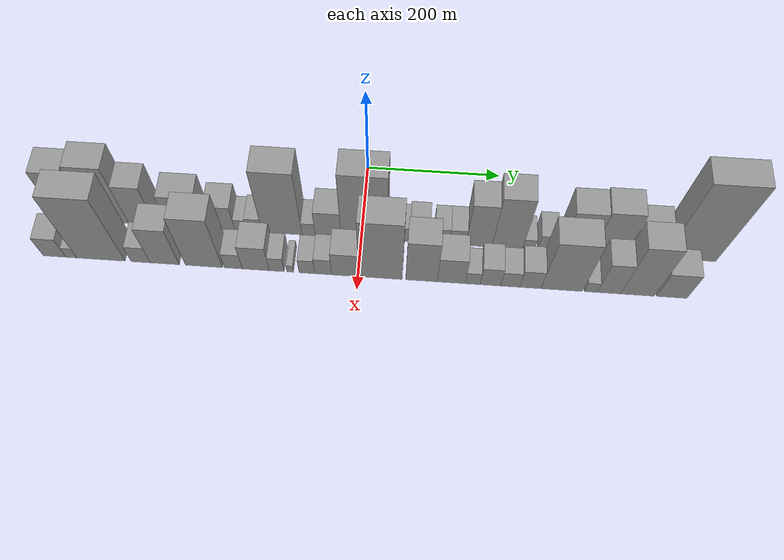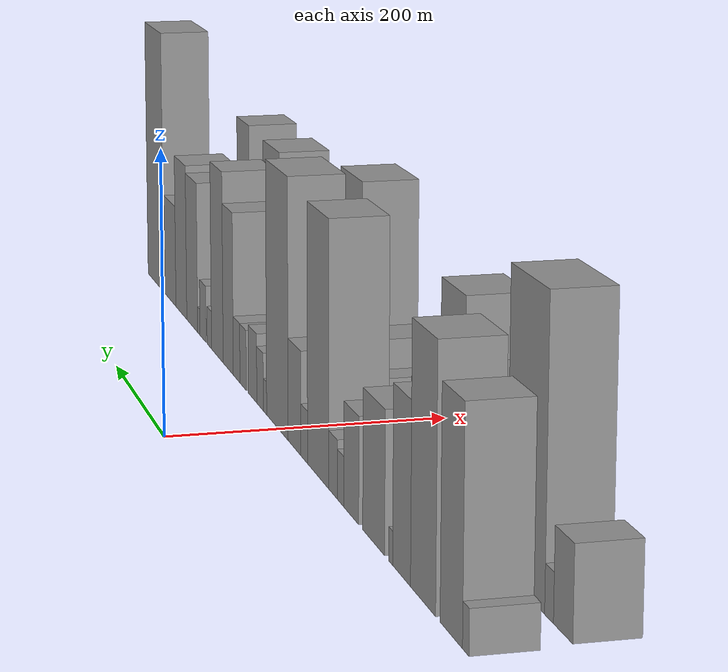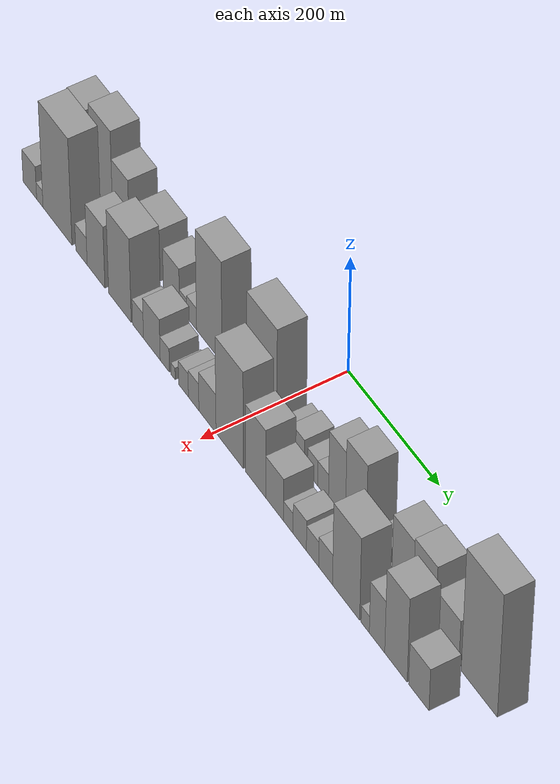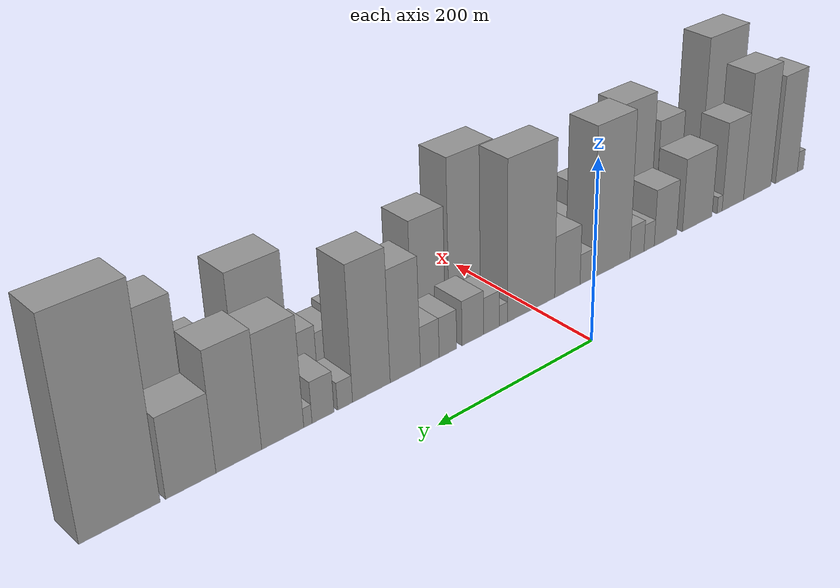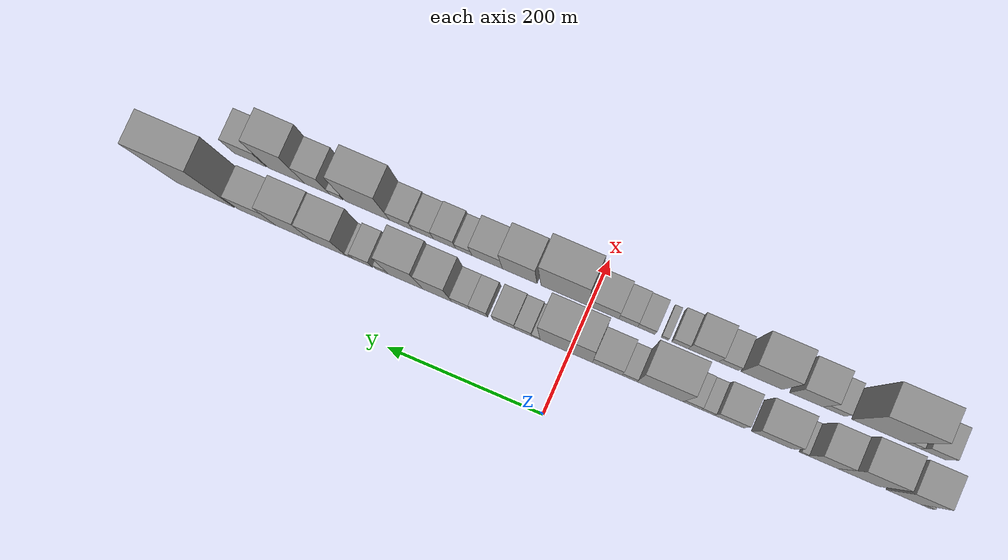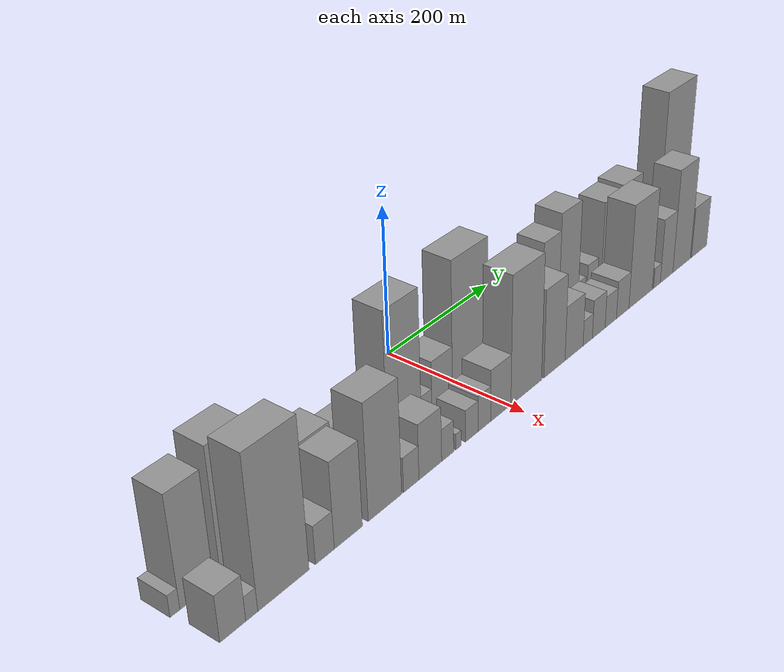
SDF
<sdf version="1.6">
 <world name="default">
  <scene>
   <sky><clouds><speed>12</speed></clouds></sky>
   <ambient>0.4 0.4 0.4 1</ambient>
   <background>0.7 0.7 0.7 1</background>
   <shadows>1</shadows>
  </scene>
  <gravity>0 0 -9.8066</gravity>
  <magnetic_field>6e-06 2.3e-05 -4.2e-05</magnetic_field>
  <physics default="0" name="default_physics" type="ode">
   <ode>
    <solver>
     <type>quick</type>
     <iters>10</iters>
     <sor>1.0</sor>
     <use_dynamic_moi_rescaling>0</use_dynamic_moi_rescaling>
    </solver>
    <constraints>
     <cfm>0</cfm>
     <erp>0.2</erp>
     <contact_max_correcting_vel>100</contact_max_correcting_vel>
     <contact_surface_layer>0.001</contact_surface_layer>
    </constraints>
   </ode>
   <max_step_size>0.004</max_step_size>
   <real_time_factor>1</real_time_factor>
   <real_time_update_rate>250</real_time_update_rate>
  </physics>
  <light name="sun" type="directional">
   <pose>0 0 10 0 0 0</pose>
   <diffuse>0.8 0.8 0.8 1</diffuse>
   <specular>0.2 0.2 0.2 1</specular>
   <attenuation>
    <range>1000</range>
    <constant>0.9</constant>
    <linear>0.01</linear>
    <quadratic>0.001</quadratic>
   </attenuation>
   <direction>-0.5 0.1 -0.9</direction>
  </light>
  <model name="building_1">
   <static>1</static>
   <pose>100.0000 -453.8603 0 0.000000 0.000000 0.000000</pose>
   <link name="link">
    <pose>0 0 13.50 0 0 0</pose>
    <collision name="collision"><geometry><box><size>40.0000 12.2794 27.0000</size></box></geometry></collision>
    <visual name="visual">
     <cast_shadows>0</cast_shadows>
     <geometry><box><size>40.0000 12.2794 27.0000</size></box></geometry>
     <material>
      <script>
       <uri>model://grey_wall/materials/scripts</uri>
       <uri>model://grey_wall/materials/textures</uri>
       <name>vrc/grey_wall</name>
      </script>
     </material>
    </visual>
   </link>
  </model>
  <model name="building_2">
   <static>1</static>
   <pose>100.0000 -425.9283 0 0.000000 0.000000 0.000000</pose>
   <link name="link">
    <pose>0 0 69.00 0 0 0</pose>
    <collision name="collision"><geometry><box><size>40.0000 43.5848 138.0000</size></box></geometry></collision>
    <visual name="visual">
     <cast_shadows>0</cast_shadows>
     <geometry><box><size>40.0000 43.5848 138.0000</size></box></geometry>
     <material>
      <script>
       <uri>model://grey_wall/materials/scripts</uri>
       <uri>model://grey_wall/materials/textures</uri>
       <name>vrc/grey_wall</name>
      </script>
     </material>
    </visual>
   </link>
  </model>
  <model name="building_3">
   <static>1</static>
   <pose>100.0000 -368.9042 0 0.000000 0.000000 0.000000</pose>
   <link name="link">
    <pose>0 0 79.50 0 0 0</pose>
    <collision name="collision"><geometry><box><size>40.0000 52.4633 159.0000</size></box></geometry></collision>
    <visual name="visual">
     <cast_shadows>0</cast_shadows>
     <geometry><box><size>40.0000 52.4633 159.0000</size></box></geometry>
     <material>
      <script>
       <uri>model://grey_wall/materials/scripts</uri>
       <uri>model://grey_wall/materials/textures</uri>
       <name>vrc/grey_wall</name>
      </script>
     </material>
    </visual>
   </link>
  </model>
  <model name="building_4">
   <static>1</static>
   <pose>100.0000 -322.9134 0 0.000000 0.000000 0.000000</pose>
   <link name="link">
    <pose>0 0 55.50 0 0 0</pose>
    <collision name="collision"><geometry><box><size>40.0000 39.5183 111.0000</size></box></geometry></collision>
    <visual name="visual">
     <cast_shadows>0</cast_shadows>
     <geometry><box><size>40.0000 39.5183 111.0000</size></box></geometry>
     <material>
      <script>
       <uri>model://grey_wall/materials/scripts</uri>
       <uri>model://grey_wall/materials/textures</uri>
       <name>vrc/grey_wall</name>
      </script>
     </material>
    </visual>
   </link>
  </model>
  <model name="building_5">
   <static>1</static>
   <pose>100.0000 -298.5578 0 0.000000 0.000000 0.000000</pose>
   <link name="link">
    <pose>0 0 10.50 0 0 0</pose>
    <collision name="collision"><geometry><box><size>40.0000 9.1928 21.0000</size></box></geometry></collision>
    <visual name="visual">
     <cast_shadows>0</cast_shadows>
     <geometry><box><size>40.0000 9.1928 21.0000</size></box></geometry>
     <material>
      <script>
       <uri>model://grey_wall/materials/scripts</uri>
       <uri>model://grey_wall/materials/textures</uri>
       <name>vrc/grey_wall</name>
      </script>
     </material>
    </visual>
   </link>
  </model>
  <model name="building_6">
   <static>1</static>
   <pose>100.0000 -258.9141 0 0.000000 0.000000 0.000000</pose>
   <link name="link">
    <pose>0 0 45.00 0 0 0</pose>
    <collision name="collision"><geometry><box><size>40.0000 52.0945 90.0000</size></box></geometry></collision>
    <visual name="visual">
     <cast_shadows>0</cast_shadows>
     <geometry><box><size>40.0000 52.0945 90.0000</size></box></geometry>
     <material>
      <script>
       <uri>model://grey_wall/materials/scripts</uri>
       <uri>model://grey_wall/materials/textures</uri>
       <name>vrc/grey_wall</name>
      </script>
     </material>
    </visual>
   </link>
  </model>
  <model name="building_7">
   <static>1</static>
   <pose>100.0000 -203.9618 0 0.000000 0.000000 0.000000</pose>
   <link name="link">
    <pose>0 0 34.50 0 0 0</pose>
    <collision name="collision"><geometry><box><size>40.0000 37.8100 69.0000</size></box></geometry></collision>
    <visual name="visual">
     <cast_shadows>0</cast_shadows>
     <geometry><box><size>40.0000 37.8100 69.0000</size></box></geometry>
     <material>
      <script>
       <uri>model://grey_wall/materials/scripts</uri>
       <uri>model://grey_wall/materials/textures</uri>
       <name>vrc/grey_wall</name>
      </script>
     </material>
    </visual>
   </link>
  </model>
  <model name="building_8">
   <static>1</static>
   <pose>100.0000 -176.5491 0 0.000000 0.000000 0.000000</pose>
   <link name="link">
    <pose>0 0 16.50 0 0 0</pose>
    <collision name="collision"><geometry><box><size>40.0000 17.0155 33.0000</size></box></geometry></collision>
    <visual name="visual">
     <cast_shadows>0</cast_shadows>
     <geometry><box><size>40.0000 17.0155 33.0000</size></box></geometry>
     <material>
      <script>
       <uri>model://grey_wall/materials/scripts</uri>
       <uri>model://grey_wall/materials/textures</uri>
       <name>vrc/grey_wall</name>
      </script>
     </material>
    </visual>
   </link>
  </model>
  <model name="building_9">
   <static>1</static>
   <pose>100.0000 -156.6429 0 0.000000 0.000000 0.000000</pose>
   <link name="link">
    <pose>0 0 19.50 0 0 0</pose>
    <collision name="collision"><geometry><box><size>40.0000 22.7969 39.0000</size></box></geometry></collision>
    <visual name="visual">
     <cast_shadows>0</cast_shadows>
     <geometry><box><size>40.0000 22.7969 39.0000</size></box></geometry>
     <material>
      <script>
       <uri>model://grey_wall/materials/scripts</uri>
       <uri>model://grey_wall/materials/textures</uri>
       <name>vrc/grey_wall</name>
      </script>
     </material>
    </visual>
   </link>
  </model>
  <model name="building_10">
   <static>1</static>
   <pose>100.0000 -115.8984 0 0.000000 0.000000 0.000000</pose>
   <link name="link">
    <pose>0 0 88.50 0 0 0</pose>
    <collision name="collision"><geometry><box><size>40.0000 58.6921 177.0000</size></box></geometry></collision>
    <visual name="visual">
     <cast_shadows>0</cast_shadows>
     <geometry><box><size>40.0000 58.6921 177.0000</size></box></geometry>
     <material>
      <script>
       <uri>model://grey_wall/materials/scripts</uri>
       <uri>model://grey_wall/materials/textures</uri>
       <name>vrc/grey_wall</name>
      </script>
     </material>
    </visual>
   </link>
  </model>
  <model name="building_11">
   <static>1</static>
   <pose>100.0000 -76.8967 0 0.000000 0.000000 0.000000</pose>
   <link name="link">
    <pose>0 0 18.00 0 0 0</pose>
    <collision name="collision"><geometry><box><size>40.0000 19.3113 36.0000</size></box></geometry></collision>
    <visual name="visual">
     <cast_shadows>0</cast_shadows>
     <geometry><box><size>40.0000 19.3113 36.0000</size></box></geometry>
     <material>
      <script>
       <uri>model://grey_wall/materials/scripts</uri>
       <uri>model://grey_wall/materials/textures</uri>
       <name>vrc/grey_wall</name>
      </script>
     </material>
    </visual>
   </link>
  </model>
  <model name="building_12">
   <static>1</static>
   <pose>100.0000 -48.3163 0 0.000000 0.000000 0.000000</pose>
   <link name="link">
    <pose>0 0 36.00 0 0 0</pose>
    <collision name="collision"><geometry><box><size>40.0000 37.8495 72.0000</size></box></geometry></collision>
    <visual name="visual">
     <cast_shadows>0</cast_shadows>
     <geometry><box><size>40.0000 37.8495 72.0000</size></box></geometry>
     <material>
      <script>
       <uri>model://grey_wall/materials/scripts</uri>
       <uri>model://grey_wall/materials/textures</uri>
       <name>vrc/grey_wall</name>
      </script>
     </material>
    </visual>
   </link>
  </model>
  <model name="building_13">
   <static>1</static>
   <pose>100.0000 4.3595 0 0.000000 0.000000 0.000000</pose>
   <link name="link">
    <pose>0 0 91.50 0 0 0</pose>
    <collision name="collision"><geometry><box><size>40.0000 67.5020 183.0000</size></box></geometry></collision>
    <visual name="visual">
     <cast_shadows>0</cast_shadows>
     <geometry><box><size>40.0000 67.5020 183.0000</size></box></geometry>
     <material>
      <script>
       <uri>model://grey_wall/materials/scripts</uri>
       <uri>model://grey_wall/materials/textures</uri>
       <name>vrc/grey_wall</name>
      </script>
     </material>
    </visual>
   </link>
  </model>
  <model name="building_14">
   <static>1</static>
   <pose>100.0000 43.5884 0 0.000000 0.000000 0.000000</pose>
   <link name="link">
    <pose>0 0 12.00 0 0 0</pose>
    <collision name="collision"><geometry><box><size>40.0000 10.9560 24.0000</size></box></geometry></collision>
    <visual name="visual">
     <cast_shadows>0</cast_shadows>
     <geometry><box><size>40.0000 10.9560 24.0000</size></box></geometry>
     <material>
      <script>
       <uri>model://grey_wall/materials/scripts</uri>
       <uri>model://grey_wall/materials/textures</uri>
       <name>vrc/grey_wall</name>
      </script>
     </material>
    </visual>
   </link>
  </model>
  <model name="building_15">
   <static>1</static>
   <pose>100.0000 59.7960 0 0.000000 0.000000 0.000000</pose>
   <link name="link">
    <pose>0 0 21.00 0 0 0</pose>
    <collision name="collision"><geometry><box><size>40.0000 21.4591 42.0000</size></box></geometry></collision>
    <visual name="visual">
     <cast_shadows>0</cast_shadows>
     <geometry><box><size>40.0000 21.4591 42.0000</size></box></geometry>
     <material>
      <script>
       <uri>model://grey_wall/materials/scripts</uri>
       <uri>model://grey_wall/materials/textures</uri>
       <name>vrc/grey_wall</name>
      </script>
     </material>
    </visual>
   </link>
  </model>
  <model name="building_16">
   <static>1</static>
   <pose>100.0000 84.7929 0 0.000000 0.000000 0.000000</pose>
   <link name="link">
    <pose>0 0 25.50 0 0 0</pose>
    <collision name="collision"><geometry><box><size>40.0000 28.5347 51.0000</size></box></geometry></collision>
    <visual name="visual">
     <cast_shadows>0</cast_shadows>
     <geometry><box><size>40.0000 28.5347 51.0000</size></box></geometry>
     <material>
      <script>
       <uri>model://grey_wall/materials/scripts</uri>
       <uri>model://grey_wall/materials/textures</uri>
       <name>vrc/grey_wall</name>
      </script>
     </material>
    </visual>
   </link>
  </model>
  <model name="building_17">
   <static>1</static>
   <pose>100.0000 117.4053 0 0.000000 0.000000 0.000000</pose>
   <link name="link">
    <pose>0 0 22.50 0 0 0</pose>
    <collision name="collision"><geometry><box><size>40.0000 22.6900 45.0000</size></box></geometry></collision>
    <visual name="visual">
     <cast_shadows>0</cast_shadows>
     <geometry><box><size>40.0000 22.6900 45.0000</size></box></geometry>
     <material>
      <script>
       <uri>model://grey_wall/materials/scripts</uri>
       <uri>model://grey_wall/materials/textures</uri>
       <name>vrc/grey_wall</name>
      </script>
     </material>
    </visual>
   </link>
  </model>
  <model name="building_18">
   <static>1</static>
   <pose>100.0000 140.6552 0 0.000000 0.000000 0.000000</pose>
   <link name="link">
    <pose>0 0 22.50 0 0 0</pose>
    <collision name="collision"><geometry><box><size>40.0000 23.8099 45.0000</size></box></geometry></collision>
    <visual name="visual">
     <cast_shadows>0</cast_shadows>
     <geometry><box><size>40.0000 23.8099 45.0000</size></box></geometry>
     <material>
      <script>
       <uri>model://grey_wall/materials/scripts</uri>
       <uri>model://grey_wall/materials/textures</uri>
       <name>vrc/grey_wall</name>
      </script>
     </material>
    </visual>
   </link>
  </model>
  <model name="building_19">
   <static>1</static>
   <pose>100.0000 171.1310 0 0.000000 0.000000 0.000000</pose>
   <link name="link">
    <pose>0 0 61.50 0 0 0</pose>
    <collision name="collision"><geometry><box><size>40.0000 37.1417 123.0000</size></box></geometry></collision>
    <visual name="visual">
     <cast_shadows>0</cast_shadows>
     <geometry><box><size>40.0000 37.1417 123.0000</size></box></geometry>
     <material>
      <script>
       <uri>model://grey_wall/materials/scripts</uri>
       <uri>model://grey_wall/materials/textures</uri>
       <name>vrc/grey_wall</name>
      </script>
     </material>
    </visual>
   </link>
  </model>
  <model name="building_20">
   <static>1</static>
   <pose>100.0000 212.0285 0 0.000000 0.000000 0.000000</pose>
   <link name="link">
    <pose>0 0 73.50 0 0 0</pose>
    <collision name="collision"><geometry><box><size>40.0000 44.6534 147.0000</size></box></geometry></collision>
    <visual name="visual">
     <cast_shadows>0</cast_shadows>
     <geometry><box><size>40.0000 44.6534 147.0000</size></box></geometry>
     <material>
      <script>
       <uri>model://grey_wall/materials/scripts</uri>
       <uri>model://grey_wall/materials/textures</uri>
       <name>vrc/grey_wall</name>
      </script>
     </material>
    </visual>
   </link>
  </model>
  <model name="building_21">
   <static>1</static>
   <pose>100.0000 243.0158 0 0.000000 0.000000 0.000000</pose>
   <link name="link">
    <pose>0 0 15.00 0 0 0</pose>
    <collision name="collision"><geometry><box><size>40.0000 17.3211 30.0000</size></box></geometry></collision>
    <visual name="visual">
     <cast_shadows>0</cast_shadows>
     <geometry><box><size>40.0000 17.3211 30.0000</size></box></geometry>
     <material>
      <script>
       <uri>model://grey_wall/materials/scripts</uri>
       <uri>model://grey_wall/materials/textures</uri>
       <name>vrc/grey_wall</name>
      </script>
     </material>
    </visual>
   </link>
  </model>
  <model name="building_22">
   <static>1</static>
   <pose>100.0000 268.0536 0 0.000000 0.000000 0.000000</pose>
   <link name="link">
    <pose>0 0 22.50 0 0 0</pose>
    <collision name="collision"><geometry><box><size>40.0000 24.7546 45.0000</size></box></geometry></collision>
    <visual name="visual">
     <cast_shadows>0</cast_shadows>
     <geometry><box><size>40.0000 24.7546 45.0000</size></box></geometry>
     <material>
      <script>
       <uri>model://grey_wall/materials/scripts</uri>
       <uri>model://grey_wall/materials/textures</uri>
       <name>vrc/grey_wall</name>
      </script>
     </material>
    </visual>
   </link>
  </model>
  <model name="building_23">
   <static>1</static>
   <pose>100.0000 285.0115 0 0.000000 0.000000 0.000000</pose>
   <link name="link">
    <pose>0 0 10.50 0 0 0</pose>
    <collision name="collision"><geometry><box><size>40.0000 9.1611 21.0000</size></box></geometry></collision>
    <visual name="visual">
     <cast_shadows>0</cast_shadows>
     <geometry><box><size>40.0000 9.1611 21.0000</size></box></geometry>
     <material>
      <script>
       <uri>model://grey_wall/materials/scripts</uri>
       <uri>model://grey_wall/materials/textures</uri>
       <name>vrc/grey_wall</name>
      </script>
     </material>
    </visual>
   </link>
  </model>
  <model name="building_24">
   <static>1</static>
   <pose>100.0000 312.2722 0 0.000000 0.000000 0.000000</pose>
   <link name="link">
    <pose>0 0 60.00 0 0 0</pose>
    <collision name="collision"><geometry><box><size>40.0000 45.3604 120.0000</size></box></geometry></collision>
    <visual name="visual">
     <cast_shadows>0</cast_shadows>
     <geometry><box><size>40.0000 45.3604 120.0000</size></box></geometry>
     <material>
      <script>
       <uri>model://grey_wall/materials/scripts</uri>
       <uri>model://grey_wall/materials/textures</uri>
       <name>vrc/grey_wall</name>
      </script>
     </material>
    </visual>
   </link>
  </model>
  <model name="building_25">
   <static>1</static>
   <pose>100.0000 358.5062 0 0.000000 0.000000 0.000000</pose>
   <link name="link">
    <pose>0 0 63.00 0 0 0</pose>
    <collision name="collision"><geometry><box><size>40.0000 47.1075 126.0000</size></box></geometry></collision>
    <visual name="visual">
     <cast_shadows>0</cast_shadows>
     <geometry><box><size>40.0000 47.1075 126.0000</size></box></geometry>
     <material>
      <script>
       <uri>model://grey_wall/materials/scripts</uri>
       <uri>model://grey_wall/materials/textures</uri>
       <name>vrc/grey_wall</name>
      </script>
     </material>
    </visual>
   </link>
  </model>
  <model name="building_26">
   <static>1</static>
   <pose>100.0000 406.8264 0 0.000000 0.000000 0.000000</pose>
   <link name="link">
    <pose>0 0 42.00 0 0 0</pose>
    <collision name="collision"><geometry><box><size>40.0000 49.5330 84.0000</size></box></geometry></collision>
    <visual name="visual">
     <cast_shadows>0</cast_shadows>
     <geometry><box><size>40.0000 49.5330 84.0000</size></box></geometry>
     <material>
      <script>
       <uri>model://grey_wall/materials/scripts</uri>
       <uri>model://grey_wall/materials/textures</uri>
       <name>vrc/grey_wall</name>
      </script>
     </material>
    </visual>
   </link>
  </model>
  <model name="building_27">
   <static>1</static>
   <pose>100.0000 474.0046 0 0.000000 0.000000 0.000000</pose>
   <link name="link">
    <pose>0 0 109.50 0 0 0</pose>
    <collision name="collision"><geometry><box><size>40.0000 74.8234 219.0000</size></box></geometry></collision>
    <visual name="visual">
     <cast_shadows>0</cast_shadows>
     <geometry><box><size>40.0000 74.8234 219.0000</size></box></geometry>
     <material>
      <script>
       <uri>model://grey_wall/materials/scripts</uri>
       <uri>model://grey_wall/materials/textures</uri>
       <name>vrc/grey_wall</name>
      </script>
     </material>
    </visual>
   </link>
  </model>
  <model name="building_28">
   <static>1</static>
   <pose>160.0000 -438.3810 0 0.000000 0.000000 0.000000</pose>
   <link name="link">
    <pose>0 0 28.50 0 0 0</pose>
    <collision name="collision"><geometry><box><size>40.0000 33.2380 57.0000</size></box></geometry></collision>
    <visual name="visual">
     <cast_shadows>0</cast_shadows>
     <geometry><box><size>40.0000 33.2380 57.0000</size></box></geometry>
     <material>
      <script>
       <uri>model://grey_wall/materials/scripts</uri>
       <uri>model://grey_wall/materials/textures</uri>
       <name>vrc/grey_wall</name>
      </script>
     </material>
    </visual>
   </link>
  </model>
  <model name="building_29">
   <static>1</static>
   <pose>160.0000 -413.9481 0 0.000000 0.000000 0.000000</pose>
   <link name="link">
    <pose>0 0 15.00 0 0 0</pose>
    <collision name="collision"><geometry><box><size>40.0000 15.6278 30.0000</size></box></geometry></collision>
    <visual name="visual">
     <cast_shadows>0</cast_shadows>
     <geometry><box><size>40.0000 15.6278 30.0000</size></box></geometry>
     <material>
      <script>
       <uri>model://grey_wall/materials/scripts</uri>
       <uri>model://grey_wall/materials/textures</uri>
       <name>vrc/grey_wall</name>
      </script>
     </material>
    </visual>
   </link>
  </model>
  <model name="building_30">
   <static>1</static>
   <pose>160.0000 -370.9385 0 0.000000 0.000000 0.000000</pose>
   <link name="link">
    <pose>0 0 93.00 0 0 0</pose>
    <collision name="collision"><geometry><box><size>40.0000 70.3914 186.0000</size></box></geometry></collision>
    <visual name="visual">
     <cast_shadows>0</cast_shadows>
     <geometry><box><size>40.0000 70.3914 186.0000</size></box></geometry>
     <material>
      <script>
       <uri>model://grey_wall/materials/scripts</uri>
       <uri>model://grey_wall/materials/textures</uri>
       <name>vrc/grey_wall</name>
      </script>
     </material>
    </visual>
   </link>
  </model>
  <model name="building_31">
   <static>1</static>
   <pose>160.0000 -313.0013 0 0.000000 0.000000 0.000000</pose>
   <link name="link">
    <pose>0 0 24.00 0 0 0</pose>
    <collision name="collision"><geometry><box><size>40.0000 27.4829 48.0000</size></box></geometry></collision>
    <visual name="visual">
     <cast_shadows>0</cast_shadows>
     <geometry><box><size>40.0000 27.4829 48.0000</size></box></geometry>
     <material>
      <script>
       <uri>model://grey_wall/materials/scripts</uri>
       <uri>model://grey_wall/materials/textures</uri>
       <name>vrc/grey_wall</name>
      </script>
     </material>
    </visual>
   </link>
  </model>
  <model name="building_32">
   <static>1</static>
   <pose>160.0000 -278.0594 0 0.000000 0.000000 0.000000</pose>
   <link name="link">
    <pose>0 0 54.00 0 0 0</pose>
    <collision name="collision"><geometry><box><size>40.0000 42.4009 108.0000</size></box></geometry></collision>
    <visual name="visual">
     <cast_shadows>0</cast_shadows>
     <geometry><box><size>40.0000 42.4009 108.0000</size></box></geometry>
     <material>
      <script>
       <uri>model://grey_wall/materials/scripts</uri>
       <uri>model://grey_wall/materials/textures</uri>
       <name>vrc/grey_wall</name>
      </script>
     </material>
    </visual>
   </link>
  </model>
  <model name="building_33">
   <static>1</static>
   <pose>160.0000 -221.2071 0 0.000000 0.000000 0.000000</pose>
   <link name="link">
    <pose>0 0 73.50 0 0 0</pose>
    <collision name="collision"><geometry><box><size>40.0000 53.3037 147.0000</size></box></geometry></collision>
    <visual name="visual">
     <cast_shadows>0</cast_shadows>
     <geometry><box><size>40.0000 53.3037 147.0000</size></box></geometry>
     <material>
      <script>
       <uri>model://grey_wall/materials/scripts</uri>
       <uri>model://grey_wall/materials/textures</uri>
       <name>vrc/grey_wall</name>
      </script>
     </material>
    </visual>
   </link>
  </model>
  <model name="building_34">
   <static>1</static>
   <pose>160.0000 -178.6978 0 0.000000 0.000000 0.000000</pose>
   <link name="link">
    <pose>0 0 22.50 0 0 0</pose>
    <collision name="collision"><geometry><box><size>40.0000 25.7149 45.0000</size></box></geometry></collision>
    <visual name="visual">
     <cast_shadows>0</cast_shadows>
     <geometry><box><size>40.0000 25.7149 45.0000</size></box></geometry>
     <material>
      <script>
       <uri>model://grey_wall/materials/scripts</uri>
       <uri>model://grey_wall/materials/textures</uri>
       <name>vrc/grey_wall</name>
      </script>
     </material>
    </visual>
   </link>
  </model>
  <model name="building_35">
   <static>1</static>
   <pose>160.0000 -146.3801 0 0.000000 0.000000 0.000000</pose>
   <link name="link">
    <pose>0 0 36.00 0 0 0</pose>
    <collision name="collision"><geometry><box><size>40.0000 38.9205 72.0000</size></box></geometry></collision>
    <visual name="visual">
     <cast_shadows>0</cast_shadows>
     <geometry><box><size>40.0000 38.9205 72.0000</size></box></geometry>
     <material>
      <script>
       <uri>model://grey_wall/materials/scripts</uri>
       <uri>model://grey_wall/materials/textures</uri>
       <name>vrc/grey_wall</name>
      </script>
     </material>
    </visual>
   </link>
  </model>
  <model name="building_36">
   <static>1</static>
   <pose>160.0000 -116.2025 0 0.000000 0.000000 0.000000</pose>
   <link name="link">
    <pose>0 0 21.00 0 0 0</pose>
    <collision name="collision"><geometry><box><size>40.0000 21.4346 42.0000</size></box></geometry></collision>
    <visual name="visual">
     <cast_shadows>0</cast_shadows>
     <geometry><box><size>40.0000 21.4346 42.0000</size></box></geometry>
     <material>
      <script>
       <uri>model://grey_wall/materials/scripts</uri>
       <uri>model://grey_wall/materials/textures</uri>
       <name>vrc/grey_wall</name>
      </script>
     </material>
    </visual>
   </link>
  </model>
  <model name="building_37">
   <static>1</static>
   <pose>160.0000 -96.7772 0 0.000000 0.000000 0.000000</pose>
   <link name="link">
    <pose>0 0 10.50 0 0 0</pose>
    <collision name="collision"><geometry><box><size>40.0000 9.4161 21.0000</size></box></geometry></collision>
    <visual name="visual">
     <cast_shadows>0</cast_shadows>
     <geometry><box><size>40.0000 9.4161 21.0000</size></box></geometry>
     <material>
      <script>
       <uri>model://grey_wall/materials/scripts</uri>
       <uri>model://grey_wall/materials/textures</uri>
       <name>vrc/grey_wall</name>
      </script>
     </material>
    </visual>
   </link>
  </model>
  <model name="building_38">
   <static>1</static>
   <pose>160.0000 -72.8400 0 0.000000 0.000000 0.000000</pose>
   <link name="link">
    <pose>0 0 21.00 0 0 0</pose>
    <collision name="collision"><geometry><box><size>40.0000 22.4582 42.0000</size></box></geometry></collision>
    <visual name="visual">
     <cast_shadows>0</cast_shadows>
     <geometry><box><size>40.0000 22.4582 42.0000</size></box></geometry>
     <material>
      <script>
       <uri>model://grey_wall/materials/scripts</uri>
       <uri>model://grey_wall/materials/textures</uri>
       <name>vrc/grey_wall</name>
      </script>
     </material>
    </visual>
   </link>
  </model>
  <model name="building_39">
   <static>1</static>
   <pose>160.0000 -49.5598 0 0.000000 0.000000 0.000000</pose>
   <link name="link">
    <pose>0 0 24.00 0 0 0</pose>
    <collision name="collision"><geometry><box><size>40.0000 24.1021 48.0000</size></box></geometry></collision>
    <visual name="visual">
     <cast_shadows>0</cast_shadows>
     <geometry><box><size>40.0000 24.1021 48.0000</size></box></geometry>
     <material>
      <script>
       <uri>model://grey_wall/materials/scripts</uri>
       <uri>model://grey_wall/materials/textures</uri>
       <name>vrc/grey_wall</name>
      </script>
     </material>
    </visual>
   </link>
  </model>
  <model name="building_40">
   <static>1</static>
   <pose>160.0000 -18.0210 0 0.000000 0.000000 0.000000</pose>
   <link name="link">
    <pose>0 0 34.50 0 0 0</pose>
    <collision name="collision"><geometry><box><size>40.0000 38.9756 69.0000</size></box></geometry></collision>
    <visual name="visual">
     <cast_shadows>0</cast_shadows>
     <geometry><box><size>40.0000 38.9756 69.0000</size></box></geometry>
     <material>
      <script>
       <uri>model://grey_wall/materials/scripts</uri>
       <uri>model://grey_wall/materials/textures</uri>
       <name>vrc/grey_wall</name>
      </script>
     </material>
    </visual>
   </link>
  </model>
  <model name="building_41">
   <static>1</static>
   <pose>160.0000 32.3818 0 0.000000 0.000000 0.000000</pose>
   <link name="link">
    <pose>0 0 85.50 0 0 0</pose>
    <collision name="collision"><geometry><box><size>40.0000 61.8300 171.0000</size></box></geometry></collision>
    <visual name="visual">
     <cast_shadows>0</cast_shadows>
     <geometry><box><size>40.0000 61.8300 171.0000</size></box></geometry>
     <material>
      <script>
       <uri>model://grey_wall/materials/scripts</uri>
       <uri>model://grey_wall/materials/textures</uri>
       <name>vrc/grey_wall</name>
      </script>
     </material>
    </visual>
   </link>
  </model>
  <model name="building_42">
   <static>1</static>
   <pose>160.0000 90.7094 0 0.000000 0.000000 0.000000</pose>
   <link name="link">
    <pose>0 0 60.00 0 0 0</pose>
    <collision name="collision"><geometry><box><size>40.0000 44.8252 120.0000</size></box></geometry></collision>
    <visual name="visual">
     <cast_shadows>0</cast_shadows>
     <geometry><box><size>40.0000 44.8252 120.0000</size></box></geometry>
     <material>
      <script>
       <uri>model://grey_wall/materials/scripts</uri>
       <uri>model://grey_wall/materials/textures</uri>
       <name>vrc/grey_wall</name>
      </script>
     </material>
    </visual>
   </link>
  </model>
  <model name="building_43">
   <static>1</static>
   <pose>160.0000 132.9810 0 0.000000 0.000000 0.000000</pose>
   <link name="link">
    <pose>0 0 37.50 0 0 0</pose>
    <collision name="collision"><geometry><box><size>40.0000 39.7178 75.0000</size></box></geometry></collision>
    <visual name="visual">
     <cast_shadows>0</cast_shadows>
     <geometry><box><size>40.0000 39.7178 75.0000</size></box></geometry>
     <material>
      <script>
       <uri>model://grey_wall/materials/scripts</uri>
       <uri>model://grey_wall/materials/textures</uri>
       <name>vrc/grey_wall</name>
      </script>
     </material>
    </visual>
   </link>
  </model>
  <model name="building_44">
   <static>1</static>
   <pose>160.0000 163.3524 0 0.000000 0.000000 0.000000</pose>
   <link name="link">
    <pose>0 0 18.00 0 0 0</pose>
    <collision name="collision"><geometry><box><size>40.0000 21.0250 36.0000</size></box></geometry></collision>
    <visual name="visual">
     <cast_shadows>0</cast_shadows>
     <geometry><box><size>40.0000 21.0250 36.0000</size></box></geometry>
     <material>
      <script>
       <uri>model://grey_wall/materials/scripts</uri>
       <uri>model://grey_wall/materials/textures</uri>
       <name>vrc/grey_wall</name>
      </script>
     </material>
    </visual>
   </link>
  </model>
  <model name="building_45">
   <static>1</static>
   <pose>160.0000 188.4836 0 0.000000 0.000000 0.000000</pose>
   <link name="link">
    <pose>0 0 27.00 0 0 0</pose>
    <collision name="collision"><geometry><box><size>40.0000 29.2374 54.0000</size></box></geometry></collision>
    <visual name="visual">
     <cast_shadows>0</cast_shadows>
     <geometry><box><size>40.0000 29.2374 54.0000</size></box></geometry>
     <material>
      <script>
       <uri>model://grey_wall/materials/scripts</uri>
       <uri>model://grey_wall/materials/textures</uri>
       <name>vrc/grey_wall</name>
      </script>
     </material>
    </visual>
   </link>
  </model>
  <model name="building_46">
   <static>1</static>
   <pose>160.0000 216.5200 0 0.000000 0.000000 0.000000</pose>
   <link name="link">
    <pose>0 0 22.50 0 0 0</pose>
    <collision name="collision"><geometry><box><size>40.0000 26.8355 45.0000</size></box></geometry></collision>
    <visual name="visual">
     <cast_shadows>0</cast_shadows>
     <geometry><box><size>40.0000 26.8355 45.0000</size></box></geometry>
     <material>
      <script>
       <uri>model://grey_wall/materials/scripts</uri>
       <uri>model://grey_wall/materials/textures</uri>
       <name>vrc/grey_wall</name>
      </script>
     </material>
    </visual>
   </link>
  </model>
  <model name="building_47">
   <static>1</static>
   <pose>160.0000 245.0165 0 0.000000 0.000000 0.000000</pose>
   <link name="link">
    <pose>0 0 27.00 0 0 0</pose>
    <collision name="collision"><geometry><box><size>40.0000 30.1574 54.0000</size></box></geometry></collision>
    <visual name="visual">
     <cast_shadows>0</cast_shadows>
     <geometry><box><size>40.0000 30.1574 54.0000</size></box></geometry>
     <material>
      <script>
       <uri>model://grey_wall/materials/scripts</uri>
       <uri>model://grey_wall/materials/textures</uri>
       <name>vrc/grey_wall</name>
      </script>
     </material>
    </visual>
   </link>
  </model>
  <model name="building_48">
   <static>1</static>
   <pose>160.0000 289.3478 0 0.000000 0.000000 0.000000</pose>
   <link name="link">
    <pose>0 0 73.50 0 0 0</pose>
    <collision name="collision"><geometry><box><size>40.0000 58.5053 147.0000</size></box></geometry></collision>
    <visual name="visual">
     <cast_shadows>0</cast_shadows>
     <geometry><box><size>40.0000 58.5053 147.0000</size></box></geometry>
     <material>
      <script>
       <uri>model://grey_wall/materials/scripts</uri>
       <uri>model://grey_wall/materials/textures</uri>
       <name>vrc/grey_wall</name>
      </script>
     </material>
    </visual>
   </link>
  </model>
  <model name="building_49">
   <static>1</static>
   <pose>160.0000 330.3942 0 0.000000 0.000000 0.000000</pose>
   <link name="link">
    <pose>0 0 15.00 0 0 0</pose>
    <collision name="collision"><geometry><box><size>40.0000 17.5875 30.0000</size></box></geometry></collision>
    <visual name="visual">
     <cast_shadows>0</cast_shadows>
     <geometry><box><size>40.0000 17.5875 30.0000</size></box></geometry>
     <material>
      <script>
       <uri>model://grey_wall/materials/scripts</uri>
       <uri>model://grey_wall/materials/textures</uri>
       <name>vrc/grey_wall</name>
      </script>
     </material>
    </visual>
   </link>
  </model>
  <model name="building_50">
   <static>1</static>
   <pose>160.0000 355.6045 0 0.000000 0.000000 0.000000</pose>
   <link name="link">
    <pose>0 0 46.50 0 0 0</pose>
    <collision name="collision"><geometry><box><size>40.0000 32.8331 93.0000</size></box></geometry></collision>
    <visual name="visual">
     <cast_shadows>0</cast_shadows>
     <geometry><box><size>40.0000 32.8331 93.0000</size></box></geometry>
     <material>
      <script>
       <uri>model://grey_wall/materials/scripts</uri>
       <uri>model://grey_wall/materials/textures</uri>
       <name>vrc/grey_wall</name>
      </script>
     </material>
    </visual>
   </link>
  </model>
  <model name="building_51">
   <static>1</static>
   <pose>160.0000 395.7651 0 0.000000 0.000000 0.000000</pose>
   <link name="link">
    <pose>0 0 75.00 0 0 0</pose>
    <collision name="collision"><geometry><box><size>40.0000 47.4882 150.0000</size></box></geometry></collision>
    <visual name="visual">
     <cast_shadows>0</cast_shadows>
     <geometry><box><size>40.0000 47.4882 150.0000</size></box></geometry>
     <material>
      <script>
       <uri>model://grey_wall/materials/scripts</uri>
       <uri>model://grey_wall/materials/textures</uri>
       <name>vrc/grey_wall</name>
      </script>
     </material>
    </visual>
   </link>
  </model>
  <model name="building_52">
   <static>1</static>
   <pose>160.0000 443.8453 0 0.000000 0.000000 0.000000</pose>
   <link name="link">
    <pose>0 0 37.50 0 0 0</pose>
    <collision name="collision"><geometry><box><size>40.0000 42.6722 75.0000</size></box></geometry></collision>
    <visual name="visual">
     <cast_shadows>0</cast_shadows>
     <geometry><box><size>40.0000 42.6722 75.0000</size></box></geometry>
     <material>
      <script>
       <uri>model://grey_wall/materials/scripts</uri>
       <uri>model://grey_wall/materials/textures</uri>
       <name>vrc/grey_wall</name>
      </script>
     </material>
    </visual>
   </link>
  </model>
 </world>
</sdf>
